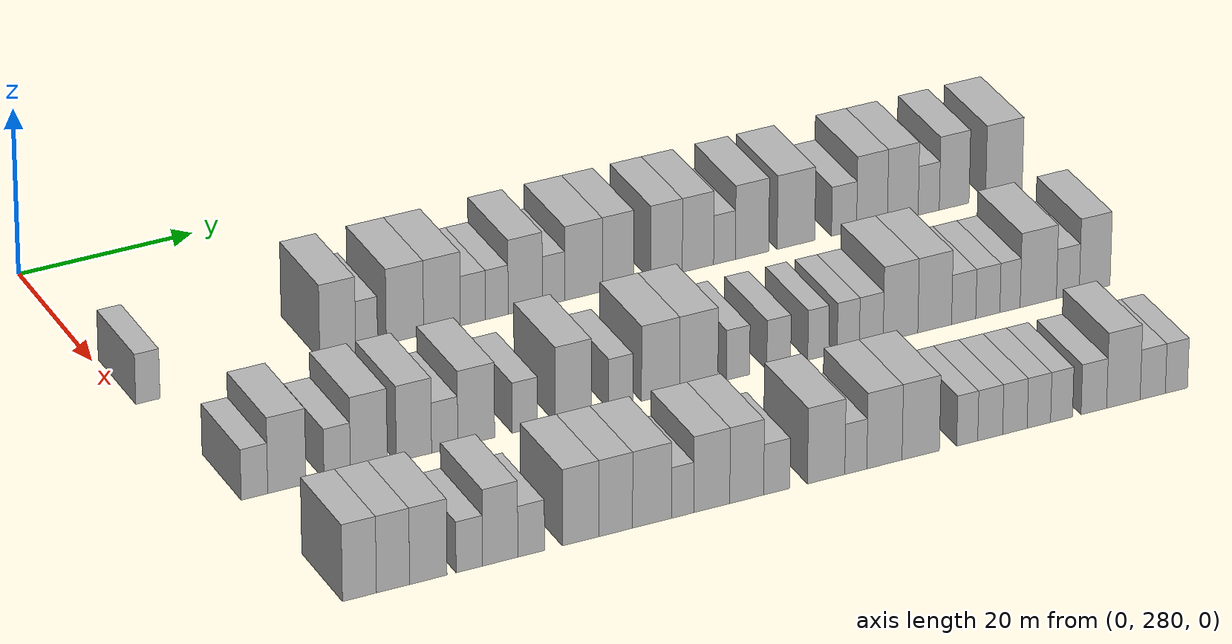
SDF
<sdf version="1.6">
 <world name="default">
  <model name="building_175">
   <static>1</static>
   <pose>25.0000 282.0387 0 0.000000 0.000000 0.000000</pose>
   <link name="link">
    <pose>0 0 3.00 0 0 0</pose>
    <collision name="collision"><geometry><box><size>10.0000 2.7257 6.0000</size></box></geometry></collision>
    <visual name="visual">
     <cast_shadows>0</cast_shadows>
     <geometry><box><size>10.0000 2.7257 6.0000</size></box></geometry>
     <material>
      <script>
       <uri>model://HANNAS_wall/materials/scripts</uri>
       <uri>model://HANNAS_wall/materials/textures</uri>
       <name>vrc/HANNAS_wall</name>
      </script>
     </material>
    </visual>
   </link>
  </model>
  <model name="building_176">
   <static>1</static>
   <pose>25.0000 303.5661 0 0.000000 0.000000 0.000000</pose>
   <link name="link">
    <pose>0 0 4.50 0 0 0</pose>
    <collision name="collision"><geometry><box><size>10.0000 4.1097 9.0000</size></box></geometry></collision>
    <visual name="visual">
     <cast_shadows>0</cast_shadows>
     <geometry><box><size>10.0000 4.1097 9.0000</size></box></geometry>
     <material>
      <script>
       <uri>model://HANNAS_wall/materials/scripts</uri>
       <uri>model://HANNAS_wall/materials/textures</uri>
       <name>vrc/HANNAS_wall</name>
      </script>
     </material>
    </visual>
   </link>
  </model>
  <model name="building_177">
   <static>1</static>
   <pose>25.0000 306.8743 0 0.000000 0.000000 0.000000</pose>
   <link name="link">
    <pose>0 0 3.00 0 0 0</pose>
    <collision name="collision"><geometry><box><size>10.0000 2.5068 6.0000</size></box></geometry></collision>
    <visual name="visual">
     <cast_shadows>0</cast_shadows>
     <geometry><box><size>10.0000 2.5068 6.0000</size></box></geometry>
     <material>
      <script>
       <uri>model://HANNAS_wall/materials/scripts</uri>
       <uri>model://HANNAS_wall/materials/textures</uri>
       <name>vrc/HANNAS_wall</name>
      </script>
     </material>
    </visual>
   </link>
  </model>
  <model name="building_178">
   <static>1</static>
   <pose>25.0000 311.2769 0 0.000000 0.000000 0.000000</pose>
   <link name="link">
    <pose>0 0 4.50 0 0 0</pose>
    <collision name="collision"><geometry><box><size>10.0000 4.2982 9.0000</size></box></geometry></collision>
    <visual name="visual">
     <cast_shadows>0</cast_shadows>
     <geometry><box><size>10.0000 4.2982 9.0000</size></box></geometry>
     <material>
      <script>
       <uri>model://HANNAS_wall/materials/scripts</uri>
       <uri>model://HANNAS_wall/materials/textures</uri>
       <name>vrc/HANNAS_wall</name>
      </script>
     </material>
    </visual>
   </link>
  </model>
  <model name="building_179">
   <static>1</static>
   <pose>25.0000 315.5444 0 0.000000 0.000000 0.000000</pose>
   <link name="link">
    <pose>0 0 4.50 0 0 0</pose>
    <collision name="collision"><geometry><box><size>10.0000 4.2368 9.0000</size></box></geometry></collision>
    <visual name="visual">
     <cast_shadows>0</cast_shadows>
     <geometry><box><size>10.0000 4.2368 9.0000</size></box></geometry>
     <material>
      <script>
       <uri>model://HANNAS_wall/materials/scripts</uri>
       <uri>model://HANNAS_wall/materials/textures</uri>
       <name>vrc/HANNAS_wall</name>
      </script>
     </material>
    </visual>
   </link>
  </model>
  <model name="building_180">
   <static>1</static>
   <pose>25.0000 319.1204 0 0.000000 0.000000 0.000000</pose>
   <link name="link">
    <pose>0 0 3.00 0 0 0</pose>
    <collision name="collision"><geometry><box><size>10.0000 2.9154 6.0000</size></box></geometry></collision>
    <visual name="visual">
     <cast_shadows>0</cast_shadows>
     <geometry><box><size>10.0000 2.9154 6.0000</size></box></geometry>
     <material>
      <script>
       <uri>model://HANNAS_wall/materials/scripts</uri>
       <uri>model://HANNAS_wall/materials/textures</uri>
       <name>vrc/HANNAS_wall</name>
      </script>
     </material>
    </visual>
   </link>
  </model>
  <model name="building_181">
   <static>1</static>
   <pose>25.0000 321.8906 0 0.000000 0.000000 0.000000</pose>
   <link name="link">
    <pose>0 0 3.00 0 0 0</pose>
    <collision name="collision"><geometry><box><size>10.0000 2.6249 6.0000</size></box></geometry></collision>
    <visual name="visual">
     <cast_shadows>0</cast_shadows>
     <geometry><box><size>10.0000 2.6249 6.0000</size></box></geometry>
     <material>
      <script>
       <uri>model://HANNAS_wall/materials/scripts</uri>
       <uri>model://HANNAS_wall/materials/textures</uri>
       <name>vrc/HANNAS_wall</name>
      </script>
     </material>
    </visual>
   </link>
  </model>
  <model name="building_182">
   <static>1</static>
   <pose>25.0000 325.1886 0 0.000000 0.000000 0.000000</pose>
   <link name="link">
    <pose>0 0 4.50 0 0 0</pose>
    <collision name="collision"><geometry><box><size>10.0000 3.9711 9.0000</size></box></geometry></collision>
    <visual name="visual">
     <cast_shadows>0</cast_shadows>
     <geometry><box><size>10.0000 3.9711 9.0000</size></box></geometry>
     <material>
      <script>
       <uri>model://HANNAS_wall/materials/scripts</uri>
       <uri>model://HANNAS_wall/materials/textures</uri>
       <name>vrc/HANNAS_wall</name>
      </script>
     </material>
    </visual>
   </link>
  </model>
  <model name="building_183">
   <static>1</static>
   <pose>25.0000 328.4750 0 0.000000 0.000000 0.000000</pose>
   <link name="link">
    <pose>0 0 3.00 0 0 0</pose>
    <collision name="collision"><geometry><box><size>10.0000 2.6016 6.0000</size></box></geometry></collision>
    <visual name="visual">
     <cast_shadows>0</cast_shadows>
     <geometry><box><size>10.0000 2.6016 6.0000</size></box></geometry>
     <material>
      <script>
       <uri>model://HANNAS_wall/materials/scripts</uri>
       <uri>model://HANNAS_wall/materials/textures</uri>
       <name>vrc/HANNAS_wall</name>
      </script>
     </material>
    </visual>
   </link>
  </model>
  <model name="building_184">
   <static>1</static>
   <pose>25.0000 331.9792 0 0.000000 0.000000 0.000000</pose>
   <link name="link">
    <pose>0 0 4.50 0 0 0</pose>
    <collision name="collision"><geometry><box><size>10.0000 4.4068 9.0000</size></box></geometry></collision>
    <visual name="visual">
     <cast_shadows>0</cast_shadows>
     <geometry><box><size>10.0000 4.4068 9.0000</size></box></geometry>
     <material>
      <script>
       <uri>model://HANNAS_wall/materials/scripts</uri>
       <uri>model://HANNAS_wall/materials/textures</uri>
       <name>vrc/HANNAS_wall</name>
      </script>
     </material>
    </visual>
   </link>
  </model>
  <model name="building_185">
   <static>1</static>
   <pose>25.0000 336.0166 0 0.000000 0.000000 0.000000</pose>
   <link name="link">
    <pose>0 0 4.50 0 0 0</pose>
    <collision name="collision"><geometry><box><size>10.0000 3.6681 9.0000</size></box></geometry></collision>
    <visual name="visual">
     <cast_shadows>0</cast_shadows>
     <geometry><box><size>10.0000 3.6681 9.0000</size></box></geometry>
     <material>
      <script>
       <uri>model://HANNAS_wall/materials/scripts</uri>
       <uri>model://HANNAS_wall/materials/textures</uri>
       <name>vrc/HANNAS_wall</name>
      </script>
     </material>
    </visual>
   </link>
  </model>
  <model name="building_186">
   <static>1</static>
   <pose>25.0000 341.7189 0 0.000000 0.000000 0.000000</pose>
   <link name="link">
    <pose>0 0 4.50 0 0 0</pose>
    <collision name="collision"><geometry><box><size>10.0000 3.7366 9.0000</size></box></geometry></collision>
    <visual name="visual">
     <cast_shadows>0</cast_shadows>
     <geometry><box><size>10.0000 3.7366 9.0000</size></box></geometry>
     <material>
      <script>
       <uri>model://HANNAS_wall/materials/scripts</uri>
       <uri>model://HANNAS_wall/materials/textures</uri>
       <name>vrc/HANNAS_wall</name>
      </script>
     </material>
    </visual>
   </link>
  </model>
  <model name="building_187">
   <static>1</static>
   <pose>25.0000 345.4388 0 0.000000 0.000000 0.000000</pose>
   <link name="link">
    <pose>0 0 4.50 0 0 0</pose>
    <collision name="collision"><geometry><box><size>10.0000 3.7031 9.0000</size></box></geometry></collision>
    <visual name="visual">
     <cast_shadows>0</cast_shadows>
     <geometry><box><size>10.0000 3.7031 9.0000</size></box></geometry>
     <material>
      <script>
       <uri>model://HANNAS_wall/materials/scripts</uri>
       <uri>model://HANNAS_wall/materials/textures</uri>
       <name>vrc/HANNAS_wall</name>
      </script>
     </material>
    </visual>
   </link>
  </model>
  <model name="building_188">
   <static>1</static>
   <pose>25.0000 348.5798 0 0.000000 0.000000 0.000000</pose>
   <link name="link">
    <pose>0 0 3.00 0 0 0</pose>
    <collision name="collision"><geometry><box><size>10.0000 2.5790 6.0000</size></box></geometry></collision>
    <visual name="visual">
     <cast_shadows>0</cast_shadows>
     <geometry><box><size>10.0000 2.5790 6.0000</size></box></geometry>
     <material>
      <script>
       <uri>model://HANNAS_wall/materials/scripts</uri>
       <uri>model://HANNAS_wall/materials/textures</uri>
       <name>vrc/HANNAS_wall</name>
      </script>
     </material>
    </visual>
   </link>
  </model>
  <model name="building_189">
   <static>1</static>
   <pose>25.0000 351.8512 0 0.000000 0.000000 0.000000</pose>
   <link name="link">
    <pose>0 0 4.50 0 0 0</pose>
    <collision name="collision"><geometry><box><size>10.0000 3.9637 9.0000</size></box></geometry></collision>
    <visual name="visual">
     <cast_shadows>0</cast_shadows>
     <geometry><box><size>10.0000 3.9637 9.0000</size></box></geometry>
     <material>
      <script>
       <uri>model://HANNAS_wall/materials/scripts</uri>
       <uri>model://HANNAS_wall/materials/textures</uri>
       <name>vrc/HANNAS_wall</name>
      </script>
     </material>
    </visual>
   </link>
  </model>
  <model name="building_190">
   <static>1</static>
   <pose>25.0000 357.0790 0 0.000000 0.000000 0.000000</pose>
   <link name="link">
    <pose>0 0 4.50 0 0 0</pose>
    <collision name="collision"><geometry><box><size>10.0000 4.4919 9.0000</size></box></geometry></collision>
    <visual name="visual">
     <cast_shadows>0</cast_shadows>
     <geometry><box><size>10.0000 4.4919 9.0000</size></box></geometry>
     <material>
      <script>
       <uri>model://HANNAS_wall/materials/scripts</uri>
       <uri>model://HANNAS_wall/materials/textures</uri>
       <name>vrc/HANNAS_wall</name>
      </script>
     </material>
    </visual>
   </link>
  </model>
  <model name="building_191">
   <static>1</static>
   <pose>25.0000 362.8228 0 0.000000 0.000000 0.000000</pose>
   <link name="link">
    <pose>0 0 3.00 0 0 0</pose>
    <collision name="collision"><geometry><box><size>10.0000 2.9957 6.0000</size></box></geometry></collision>
    <visual name="visual">
     <cast_shadows>0</cast_shadows>
     <geometry><box><size>10.0000 2.9957 6.0000</size></box></geometry>
     <material>
      <script>
       <uri>model://HANNAS_wall/materials/scripts</uri>
       <uri>model://HANNAS_wall/materials/textures</uri>
       <name>vrc/HANNAS_wall</name>
      </script>
     </material>
    </visual>
   </link>
  </model>
  <model name="building_192">
   <static>1</static>
   <pose>25.0000 366.1703 0 0.000000 0.000000 0.000000</pose>
   <link name="link">
    <pose>0 0 4.50 0 0 0</pose>
    <collision name="collision"><geometry><box><size>10.0000 3.6993 9.0000</size></box></geometry></collision>
    <visual name="visual">
     <cast_shadows>0</cast_shadows>
     <geometry><box><size>10.0000 3.6993 9.0000</size></box></geometry>
     <material>
      <script>
       <uri>model://HANNAS_wall/materials/scripts</uri>
       <uri>model://HANNAS_wall/materials/textures</uri>
       <name>vrc/HANNAS_wall</name>
      </script>
     </material>
    </visual>
   </link>
  </model>
  <model name="building_193">
   <static>1</static>
   <pose>25.0000 369.8741 0 0.000000 0.000000 0.000000</pose>
   <link name="link">
    <pose>0 0 4.50 0 0 0</pose>
    <collision name="collision"><geometry><box><size>10.0000 3.7083 9.0000</size></box></geometry></collision>
    <visual name="visual">
     <cast_shadows>0</cast_shadows>
     <geometry><box><size>10.0000 3.7083 9.0000</size></box></geometry>
     <material>
      <script>
       <uri>model://HANNAS_wall/materials/scripts</uri>
       <uri>model://HANNAS_wall/materials/textures</uri>
       <name>vrc/HANNAS_wall</name>
      </script>
     </material>
    </visual>
   </link>
  </model>
  <model name="building_194">
   <static>1</static>
   <pose>25.0000 373.0044 0 0.000000 0.000000 0.000000</pose>
   <link name="link">
    <pose>0 0 3.00 0 0 0</pose>
    <collision name="collision"><geometry><box><size>10.0000 2.5522 6.0000</size></box></geometry></collision>
    <visual name="visual">
     <cast_shadows>0</cast_shadows>
     <geometry><box><size>10.0000 2.5522 6.0000</size></box></geometry>
     <material>
      <script>
       <uri>model://HANNAS_wall/materials/scripts</uri>
       <uri>model://HANNAS_wall/materials/textures</uri>
       <name>vrc/HANNAS_wall</name>
      </script>
     </material>
    </visual>
   </link>
  </model>
  <model name="building_195">
   <static>1</static>
   <pose>25.0000 376.0838 0 0.000000 0.000000 0.000000</pose>
   <link name="link">
    <pose>0 0 4.50 0 0 0</pose>
    <collision name="collision"><geometry><box><size>10.0000 3.6067 9.0000</size></box></geometry></collision>
    <visual name="visual">
     <cast_shadows>0</cast_shadows>
     <geometry><box><size>10.0000 3.6067 9.0000</size></box></geometry>
     <material>
      <script>
       <uri>model://HANNAS_wall/materials/scripts</uri>
       <uri>model://HANNAS_wall/materials/textures</uri>
       <name>vrc/HANNAS_wall</name>
      </script>
     </material>
    </visual>
   </link>
  </model>
  <model name="building_196">
   <static>1</static>
   <pose>25.0000 382.1126 0 0.000000 0.000000 0.000000</pose>
   <link name="link">
    <pose>0 0 4.50 0 0 0</pose>
    <collision name="collision"><geometry><box><size>10.0000 4.4509 9.0000</size></box></geometry></collision>
    <visual name="visual">
     <cast_shadows>0</cast_shadows>
     <geometry><box><size>10.0000 4.4509 9.0000</size></box></geometry>
     <material>
      <script>
       <uri>model://HANNAS_wall/materials/scripts</uri>
       <uri>model://HANNAS_wall/materials/textures</uri>
       <name>vrc/HANNAS_wall</name>
      </script>
     </material>
    </visual>
   </link>
  </model>
  <model name="building_360">
   <static>1</static>
   <pose>47.0000 284.4471 0 0.000000 0.000000 0.000000</pose>
   <link name="link">
    <pose>0 0 3.00 0 0 0</pose>
    <collision name="collision"><geometry><box><size>10.0000 2.9553 6.0000</size></box></geometry></collision>
    <visual name="visual">
     <cast_shadows>0</cast_shadows>
     <geometry><box><size>10.0000 2.9553 6.0000</size></box></geometry>
     <material>
      <script>
       <uri>model://HANNAS_wall/materials/scripts</uri>
       <uri>model://HANNAS_wall/materials/textures</uri>
       <name>vrc/HANNAS_wall</name>
      </script>
     </material>
    </visual>
   </link>
  </model>
  <model name="building_361">
   <static>1</static>
   <pose>47.0000 288.0548 0 0.000000 0.000000 0.000000</pose>
   <link name="link">
    <pose>0 0 4.50 0 0 0</pose>
    <collision name="collision"><geometry><box><size>10.0000 4.2600 9.0000</size></box></geometry></collision>
    <visual name="visual">
     <cast_shadows>0</cast_shadows>
     <geometry><box><size>10.0000 4.2600 9.0000</size></box></geometry>
     <material>
      <script>
       <uri>model://HANNAS_wall/materials/scripts</uri>
       <uri>model://HANNAS_wall/materials/textures</uri>
       <name>vrc/HANNAS_wall</name>
      </script>
     </material>
    </visual>
   </link>
  </model>
  <model name="building_362">
   <static>1</static>
   <pose>47.0000 293.6644 0 0.000000 0.000000 0.000000</pose>
   <link name="link">
    <pose>0 0 3.00 0 0 0</pose>
    <collision name="collision"><geometry><box><size>10.0000 2.9591 6.0000</size></box></geometry></collision>
    <visual name="visual">
     <cast_shadows>0</cast_shadows>
     <geometry><box><size>10.0000 2.9591 6.0000</size></box></geometry>
     <material>
      <script>
       <uri>model://HANNAS_wall/materials/scripts</uri>
       <uri>model://HANNAS_wall/materials/textures</uri>
       <name>vrc/HANNAS_wall</name>
      </script>
     </material>
    </visual>
   </link>
  </model>
  <model name="building_363">
   <static>1</static>
   <pose>47.0000 297.2146 0 0.000000 0.000000 0.000000</pose>
   <link name="link">
    <pose>0 0 4.50 0 0 0</pose>
    <collision name="collision"><geometry><box><size>10.0000 4.1412 9.0000</size></box></geometry></collision>
    <visual name="visual">
     <cast_shadows>0</cast_shadows>
     <geometry><box><size>10.0000 4.1412 9.0000</size></box></geometry>
     <material>
      <script>
       <uri>model://HANNAS_wall/materials/scripts</uri>
       <uri>model://HANNAS_wall/materials/textures</uri>
       <name>vrc/HANNAS_wall</name>
      </script>
     </material>
    </visual>
   </link>
  </model>
  <model name="building_364">
   <static>1</static>
   <pose>47.0000 302.2692 0 0.000000 0.000000 0.000000</pose>
   <link name="link">
    <pose>0 0 4.50 0 0 0</pose>
    <collision name="collision"><geometry><box><size>10.0000 3.9680 9.0000</size></box></geometry></collision>
    <visual name="visual">
     <cast_shadows>0</cast_shadows>
     <geometry><box><size>10.0000 3.9680 9.0000</size></box></geometry>
     <material>
      <script>
       <uri>model://HANNAS_wall/materials/scripts</uri>
       <uri>model://HANNAS_wall/materials/textures</uri>
       <name>vrc/HANNAS_wall</name>
      </script>
     </material>
    </visual>
   </link>
  </model>
  <model name="building_365">
   <static>1</static>
   <pose>47.0000 305.7345 0 0.000000 0.000000 0.000000</pose>
   <link name="link">
    <pose>0 0 3.00 0 0 0</pose>
    <collision name="collision"><geometry><box><size>10.0000 2.9626 6.0000</size></box></geometry></collision>
    <visual name="visual">
     <cast_shadows>0</cast_shadows>
     <geometry><box><size>10.0000 2.9626 6.0000</size></box></geometry>
     <material>
      <script>
       <uri>model://HANNAS_wall/materials/scripts</uri>
       <uri>model://HANNAS_wall/materials/textures</uri>
       <name>vrc/HANNAS_wall</name>
      </script>
     </material>
    </visual>
   </link>
  </model>
  <model name="building_366">
   <static>1</static>
   <pose>47.0000 309.3019 0 0.000000 0.000000 0.000000</pose>
   <link name="link">
    <pose>0 0 4.50 0 0 0</pose>
    <collision name="collision"><geometry><box><size>10.0000 4.1722 9.0000</size></box></geometry></collision>
    <visual name="visual">
     <cast_shadows>0</cast_shadows>
     <geometry><box><size>10.0000 4.1722 9.0000</size></box></geometry>
     <material>
      <script>
       <uri>model://HANNAS_wall/materials/scripts</uri>
       <uri>model://HANNAS_wall/materials/textures</uri>
       <name>vrc/HANNAS_wall</name>
      </script>
     </material>
    </visual>
   </link>
  </model>
  <model name="building_367">
   <static>1</static>
   <pose>47.0000 314.8306 0 0.000000 0.000000 0.000000</pose>
   <link name="link">
    <pose>0 0 3.00 0 0 0</pose>
    <collision name="collision"><geometry><box><size>10.0000 2.8851 6.0000</size></box></geometry></collision>
    <visual name="visual">
     <cast_shadows>0</cast_shadows>
     <geometry><box><size>10.0000 2.8851 6.0000</size></box></geometry>
     <material>
      <script>
       <uri>model://HANNAS_wall/materials/scripts</uri>
       <uri>model://HANNAS_wall/materials/textures</uri>
       <name>vrc/HANNAS_wall</name>
      </script>
     </material>
    </visual>
   </link>
  </model>
  <model name="building_368">
   <static>1</static>
   <pose>47.0000 320.3421 0 0.000000 0.000000 0.000000</pose>
   <link name="link">
    <pose>0 0 4.50 0 0 0</pose>
    <collision name="collision"><geometry><box><size>10.0000 4.1379 9.0000</size></box></geometry></collision>
    <visual name="visual">
     <cast_shadows>0</cast_shadows>
     <geometry><box><size>10.0000 4.1379 9.0000</size></box></geometry>
     <material>
      <script>
       <uri>model://HANNAS_wall/materials/scripts</uri>
       <uri>model://HANNAS_wall/materials/textures</uri>
       <name>vrc/HANNAS_wall</name>
      </script>
     </material>
    </visual>
   </link>
  </model>
  <model name="building_369">
   <static>1</static>
   <pose>47.0000 325.7837 0 0.000000 0.000000 0.000000</pose>
   <link name="link">
    <pose>0 0 3.00 0 0 0</pose>
    <collision name="collision"><geometry><box><size>10.0000 2.7454 6.0000</size></box></geometry></collision>
    <visual name="visual">
     <cast_shadows>0</cast_shadows>
     <geometry><box><size>10.0000 2.7454 6.0000</size></box></geometry>
     <material>
      <script>
       <uri>model://HANNAS_wall/materials/scripts</uri>
       <uri>model://HANNAS_wall/materials/textures</uri>
       <name>vrc/HANNAS_wall</name>
      </script>
     </material>
    </visual>
   </link>
  </model>
  <model name="building_370">
   <static>1</static>
   <pose>47.0000 330.3551 0 0.000000 0.000000 0.000000</pose>
   <link name="link">
    <pose>0 0 4.50 0 0 0</pose>
    <collision name="collision"><geometry><box><size>10.0000 4.3973 9.0000</size></box></geometry></collision>
    <visual name="visual">
     <cast_shadows>0</cast_shadows>
     <geometry><box><size>10.0000 4.3973 9.0000</size></box></geometry>
     <material>
      <script>
       <uri>model://HANNAS_wall/materials/scripts</uri>
       <uri>model://HANNAS_wall/materials/textures</uri>
       <name>vrc/HANNAS_wall</name>
      </script>
     </material>
    </visual>
   </link>
  </model>
  <model name="building_371">
   <static>1</static>
   <pose>47.0000 334.7604 0 0.000000 0.000000 0.000000</pose>
   <link name="link">
    <pose>0 0 4.50 0 0 0</pose>
    <collision name="collision"><geometry><box><size>10.0000 4.4133 9.0000</size></box></geometry></collision>
    <visual name="visual">
     <cast_shadows>0</cast_shadows>
     <geometry><box><size>10.0000 4.4133 9.0000</size></box></geometry>
     <material>
      <script>
       <uri>model://HANNAS_wall/materials/scripts</uri>
       <uri>model://HANNAS_wall/materials/textures</uri>
       <name>vrc/HANNAS_wall</name>
      </script>
     </material>
    </visual>
   </link>
  </model>
  <model name="building_372">
   <static>1</static>
   <pose>47.0000 339.3058 0 0.000000 0.000000 0.000000</pose>
   <link name="link">
    <pose>0 0 3.00 0 0 0</pose>
    <collision name="collision"><geometry><box><size>10.0000 2.6775 6.0000</size></box></geometry></collision>
    <visual name="visual">
     <cast_shadows>0</cast_shadows>
     <geometry><box><size>10.0000 2.6775 6.0000</size></box></geometry>
     <material>
      <script>
       <uri>model://HANNAS_wall/materials/scripts</uri>
       <uri>model://HANNAS_wall/materials/textures</uri>
       <name>vrc/HANNAS_wall</name>
      </script>
     </material>
    </visual>
   </link>
  </model>
  <model name="building_373">
   <static>1</static>
   <pose>47.0000 344.0290 0 0.000000 0.000000 0.000000</pose>
   <link name="link">
    <pose>0 0 3.00 0 0 0</pose>
    <collision name="collision"><geometry><box><size>10.0000 2.7689 6.0000</size></box></geometry></collision>
    <visual name="visual">
     <cast_shadows>0</cast_shadows>
     <geometry><box><size>10.0000 2.7689 6.0000</size></box></geometry>
     <material>
      <script>
       <uri>model://HANNAS_wall/materials/scripts</uri>
       <uri>model://HANNAS_wall/materials/textures</uri>
       <name>vrc/HANNAS_wall</name>
      </script>
     </material>
    </visual>
   </link>
  </model>
  <model name="building_374">
   <static>1</static>
   <pose>47.0000 348.6358 0 0.000000 0.000000 0.000000</pose>
   <link name="link">
    <pose>0 0 3.00 0 0 0</pose>
    <collision name="collision"><geometry><box><size>10.0000 2.4446 6.0000</size></box></geometry></collision>
    <visual name="visual">
     <cast_shadows>0</cast_shadows>
     <geometry><box><size>10.0000 2.4446 6.0000</size></box></geometry>
     <material>
      <script>
       <uri>model://HANNAS_wall/materials/scripts</uri>
       <uri>model://HANNAS_wall/materials/textures</uri>
       <name>vrc/HANNAS_wall</name>
      </script>
     </material>
    </visual>
   </link>
  </model>
  <model name="building_375">
   <static>1</static>
   <pose>47.0000 352.1549 0 0.000000 0.000000 0.000000</pose>
   <link name="link">
    <pose>0 0 3.00 0 0 0</pose>
    <collision name="collision"><geometry><box><size>10.0000 2.5936 6.0000</size></box></geometry></collision>
    <visual name="visual">
     <cast_shadows>0</cast_shadows>
     <geometry><box><size>10.0000 2.5936 6.0000</size></box></geometry>
     <material>
      <script>
       <uri>model://HANNAS_wall/materials/scripts</uri>
       <uri>model://HANNAS_wall/materials/textures</uri>
       <name>vrc/HANNAS_wall</name>
      </script>
     </material>
    </visual>
   </link>
  </model>
  <model name="building_376">
   <static>1</static>
   <pose>47.0000 354.8512 0 0.000000 0.000000 0.000000</pose>
   <link name="link">
    <pose>0 0 3.00 0 0 0</pose>
    <collision name="collision"><geometry><box><size>10.0000 2.7989 6.0000</size></box></geometry></collision>
    <visual name="visual">
     <cast_shadows>0</cast_shadows>
     <geometry><box><size>10.0000 2.7989 6.0000</size></box></geometry>
     <material>
      <script>
       <uri>model://HANNAS_wall/materials/scripts</uri>
       <uri>model://HANNAS_wall/materials/textures</uri>
       <name>vrc/HANNAS_wall</name>
      </script>
     </material>
    </visual>
   </link>
  </model>
  <model name="building_377">
   <static>1</static>
   <pose>47.0000 358.2914 0 0.000000 0.000000 0.000000</pose>
   <link name="link">
    <pose>0 0 4.50 0 0 0</pose>
    <collision name="collision"><geometry><box><size>10.0000 4.0816 9.0000</size></box></geometry></collision>
    <visual name="visual">
     <cast_shadows>0</cast_shadows>
     <geometry><box><size>10.0000 4.0816 9.0000</size></box></geometry>
     <material>
      <script>
       <uri>model://HANNAS_wall/materials/scripts</uri>
       <uri>model://HANNAS_wall/materials/textures</uri>
       <name>vrc/HANNAS_wall</name>
      </script>
     </material>
    </visual>
   </link>
  </model>
  <model name="building_378">
   <static>1</static>
   <pose>47.0000 362.3248 0 0.000000 0.000000 0.000000</pose>
   <link name="link">
    <pose>0 0 4.50 0 0 0</pose>
    <collision name="collision"><geometry><box><size>10.0000 3.9851 9.0000</size></box></geometry></collision>
    <visual name="visual">
     <cast_shadows>0</cast_shadows>
     <geometry><box><size>10.0000 3.9851 9.0000</size></box></geometry>
     <material>
      <script>
       <uri>model://HANNAS_wall/materials/scripts</uri>
       <uri>model://HANNAS_wall/materials/textures</uri>
       <name>vrc/HANNAS_wall</name>
      </script>
     </material>
    </visual>
   </link>
  </model>
  <model name="building_379">
   <static>1</static>
   <pose>47.0000 365.7512 0 0.000000 0.000000 0.000000</pose>
   <link name="link">
    <pose>0 0 3.00 0 0 0</pose>
    <collision name="collision"><geometry><box><size>10.0000 2.8679 6.0000</size></box></geometry></collision>
    <visual name="visual">
     <cast_shadows>0</cast_shadows>
     <geometry><box><size>10.0000 2.8679 6.0000</size></box></geometry>
     <material>
      <script>
       <uri>model://HANNAS_wall/materials/scripts</uri>
       <uri>model://HANNAS_wall/materials/textures</uri>
       <name>vrc/HANNAS_wall</name>
      </script>
     </material>
    </visual>
   </link>
  </model>
  <model name="building_380">
   <static>1</static>
   <pose>47.0000 368.6133 0 0.000000 0.000000 0.000000</pose>
   <link name="link">
    <pose>0 0 3.00 0 0 0</pose>
    <collision name="collision"><geometry><box><size>10.0000 2.8563 6.0000</size></box></geometry></collision>
    <visual name="visual">
     <cast_shadows>0</cast_shadows>
     <geometry><box><size>10.0000 2.8563 6.0000</size></box></geometry>
     <material>
      <script>
       <uri>model://HANNAS_wall/materials/scripts</uri>
       <uri>model://HANNAS_wall/materials/textures</uri>
       <name>vrc/HANNAS_wall</name>
      </script>
     </material>
    </visual>
   </link>
  </model>
  <model name="building_381">
   <static>1</static>
   <pose>47.0000 371.2460 0 0.000000 0.000000 0.000000</pose>
   <link name="link">
    <pose>0 0 3.00 0 0 0</pose>
    <collision name="collision"><geometry><box><size>10.0000 2.4090 6.0000</size></box></geometry></collision>
    <visual name="visual">
     <cast_shadows>0</cast_shadows>
     <geometry><box><size>10.0000 2.4090 6.0000</size></box></geometry>
     <material>
      <script>
       <uri>model://HANNAS_wall/materials/scripts</uri>
       <uri>model://HANNAS_wall/materials/textures</uri>
       <name>vrc/HANNAS_wall</name>
      </script>
     </material>
    </visual>
   </link>
  </model>
  <model name="building_382">
   <static>1</static>
   <pose>47.0000 374.6171 0 0.000000 0.000000 0.000000</pose>
   <link name="link">
    <pose>0 0 4.50 0 0 0</pose>
    <collision name="collision"><geometry><box><size>10.0000 4.3332 9.0000</size></box></geometry></collision>
    <visual name="visual">
     <cast_shadows>0</cast_shadows>
     <geometry><box><size>10.0000 4.3332 9.0000</size></box></geometry>
     <material>
      <script>
       <uri>model://HANNAS_wall/materials/scripts</uri>
       <uri>model://HANNAS_wall/materials/textures</uri>
       <name>vrc/HANNAS_wall</name>
      </script>
     </material>
    </visual>
   </link>
  </model>
  <model name="building_383">
   <static>1</static>
   <pose>47.0000 378.1491 0 0.000000 0.000000 0.000000</pose>
   <link name="link">
    <pose>0 0 3.00 0 0 0</pose>
    <collision name="collision"><geometry><box><size>10.0000 2.7309 6.0000</size></box></geometry></collision>
    <visual name="visual">
     <cast_shadows>0</cast_shadows>
     <geometry><box><size>10.0000 2.7309 6.0000</size></box></geometry>
     <material>
      <script>
       <uri>model://HANNAS_wall/materials/scripts</uri>
       <uri>model://HANNAS_wall/materials/textures</uri>
       <name>vrc/HANNAS_wall</name>
      </script>
     </material>
    </visual>
   </link>
  </model>
  <model name="building_384">
   <static>1</static>
   <pose>47.0000 381.3581 0 0.000000 0.000000 0.000000</pose>
   <link name="link">
    <pose>0 0 4.50 0 0 0</pose>
    <collision name="collision"><geometry><box><size>10.0000 3.6871 9.0000</size></box></geometry></collision>
    <visual name="visual">
     <cast_shadows>0</cast_shadows>
     <geometry><box><size>10.0000 3.6871 9.0000</size></box></geometry>
     <material>
      <script>
       <uri>model://HANNAS_wall/materials/scripts</uri>
       <uri>model://HANNAS_wall/materials/textures</uri>
       <name>vrc/HANNAS_wall</name>
      </script>
     </material>
    </visual>
   </link>
  </model>
  <model name="building_555">
   <static>1</static>
   <pose>69.0000 286.2532 0 0.000000 0.000000 0.000000</pose>
   <link name="link">
    <pose>0 0 4.50 0 0 0</pose>
    <collision name="collision"><geometry><box><size>10.0000 3.7239 9.0000</size></box></geometry></collision>
    <visual name="visual">
     <cast_shadows>0</cast_shadows>
     <geometry><box><size>10.0000 3.7239 9.0000</size></box></geometry>
     <material>
      <script>
       <uri>model://HANNAS_wall/materials/scripts</uri>
       <uri>model://HANNAS_wall/materials/textures</uri>
       <name>vrc/HANNAS_wall</name>
      </script>
     </material>
    </visual>
   </link>
  </model>
  <model name="building_556">
   <static>1</static>
   <pose>69.0000 289.9377 0 0.000000 0.000000 0.000000</pose>
   <link name="link">
    <pose>0 0 4.50 0 0 0</pose>
    <collision name="collision"><geometry><box><size>10.0000 3.6452 9.0000</size></box></geometry></collision>
    <visual name="visual">
     <cast_shadows>0</cast_shadows>
     <geometry><box><size>10.0000 3.6452 9.0000</size></box></geometry>
     <material>
      <script>
       <uri>model://HANNAS_wall/materials/scripts</uri>
       <uri>model://HANNAS_wall/materials/textures</uri>
       <name>vrc/HANNAS_wall</name>
      </script>
     </material>
    </visual>
   </link>
  </model>
  <model name="building_557">
   <static>1</static>
   <pose>69.0000 293.8184 0 0.000000 0.000000 0.000000</pose>
   <link name="link">
    <pose>0 0 4.50 0 0 0</pose>
    <collision name="collision"><geometry><box><size>10.0000 4.1161 9.0000</size></box></geometry></collision>
    <visual name="visual">
     <cast_shadows>0</cast_shadows>
     <geometry><box><size>10.0000 4.1161 9.0000</size></box></geometry>
     <material>
      <script>
       <uri>model://HANNAS_wall/materials/scripts</uri>
       <uri>model://HANNAS_wall/materials/textures</uri>
       <name>vrc/HANNAS_wall</name>
      </script>
     </material>
    </visual>
   </link>
  </model>
  <model name="building_558">
   <static>1</static>
   <pose>69.0000 298.3413 0 0.000000 0.000000 0.000000</pose>
   <link name="link">
    <pose>0 0 3.00 0 0 0</pose>
    <collision name="collision"><geometry><box><size>10.0000 2.9298 6.0000</size></box></geometry></collision>
    <visual name="visual">
     <cast_shadows>0</cast_shadows>
     <geometry><box><size>10.0000 2.9298 6.0000</size></box></geometry>
     <material>
      <script>
       <uri>model://HANNAS_wall/materials/scripts</uri>
       <uri>model://HANNAS_wall/materials/textures</uri>
       <name>vrc/HANNAS_wall</name>
      </script>
     </material>
    </visual>
   </link>
  </model>
  <model name="building_559">
   <static>1</static>
   <pose>69.0000 301.7588 0 0.000000 0.000000 0.000000</pose>
   <link name="link">
    <pose>0 0 4.50 0 0 0</pose>
    <collision name="collision"><geometry><box><size>10.0000 3.9051 9.0000</size></box></geometry></collision>
    <visual name="visual">
     <cast_shadows>0</cast_shadows>
     <geometry><box><size>10.0000 3.9051 9.0000</size></box></geometry>
     <material>
      <script>
       <uri>model://HANNAS_wall/materials/scripts</uri>
       <uri>model://HANNAS_wall/materials/textures</uri>
       <name>vrc/HANNAS_wall</name>
      </script>
     </material>
    </visual>
   </link>
  </model>
  <model name="building_560">
   <static>1</static>
   <pose>69.0000 305.1915 0 0.000000 0.000000 0.000000</pose>
   <link name="link">
    <pose>0 0 3.00 0 0 0</pose>
    <collision name="collision"><geometry><box><size>10.0000 2.9604 6.0000</size></box></geometry></collision>
    <visual name="visual">
     <cast_shadows>0</cast_shadows>
     <geometry><box><size>10.0000 2.9604 6.0000</size></box></geometry>
     <material>
      <script>
       <uri>model://HANNAS_wall/materials/scripts</uri>
       <uri>model://HANNAS_wall/materials/textures</uri>
       <name>vrc/HANNAS_wall</name>
      </script>
     </material>
    </visual>
   </link>
  </model>
  <model name="building_561">
   <static>1</static>
   <pose>69.0000 310.7038 0 0.000000 0.000000 0.000000</pose>
   <link name="link">
    <pose>0 0 4.50 0 0 0</pose>
    <collision name="collision"><geometry><box><size>10.0000 4.0642 9.0000</size></box></geometry></collision>
    <visual name="visual">
     <cast_shadows>0</cast_shadows>
     <geometry><box><size>10.0000 4.0642 9.0000</size></box></geometry>
     <material>
      <script>
       <uri>model://HANNAS_wall/materials/scripts</uri>
       <uri>model://HANNAS_wall/materials/textures</uri>
       <name>vrc/HANNAS_wall</name>
      </script>
     </material>
    </visual>
   </link>
  </model>
  <model name="building_562">
   <static>1</static>
   <pose>69.0000 314.6319 0 0.000000 0.000000 0.000000</pose>
   <link name="link">
    <pose>0 0 4.50 0 0 0</pose>
    <collision name="collision"><geometry><box><size>10.0000 3.7920 9.0000</size></box></geometry></collision>
    <visual name="visual">
     <cast_shadows>0</cast_shadows>
     <geometry><box><size>10.0000 3.7920 9.0000</size></box></geometry>
     <material>
      <script>
       <uri>model://HANNAS_wall/materials/scripts</uri>
       <uri>model://HANNAS_wall/materials/textures</uri>
       <name>vrc/HANNAS_wall</name>
      </script>
     </material>
    </visual>
   </link>
  </model>
  <model name="building_563">
   <static>1</static>
   <pose>69.0000 318.7192 0 0.000000 0.000000 0.000000</pose>
   <link name="link">
    <pose>0 0 4.50 0 0 0</pose>
    <collision name="collision"><geometry><box><size>10.0000 4.3826 9.0000</size></box></geometry></collision>
    <visual name="visual">
     <cast_shadows>0</cast_shadows>
     <geometry><box><size>10.0000 4.3826 9.0000</size></box></geometry>
     <material>
      <script>
       <uri>model://HANNAS_wall/materials/scripts</uri>
       <uri>model://HANNAS_wall/materials/textures</uri>
       <name>vrc/HANNAS_wall</name>
      </script>
     </material>
    </visual>
   </link>
  </model>
  <model name="building_564">
   <static>1</static>
   <pose>69.0000 322.1604 0 0.000000 0.000000 0.000000</pose>
   <link name="link">
    <pose>0 0 3.00 0 0 0</pose>
    <collision name="collision"><geometry><box><size>10.0000 2.4997 6.0000</size></box></geometry></collision>
    <visual name="visual">
     <cast_shadows>0</cast_shadows>
     <geometry><box><size>10.0000 2.4997 6.0000</size></box></geometry>
     <material>
      <script>
       <uri>model://HANNAS_wall/materials/scripts</uri>
       <uri>model://HANNAS_wall/materials/textures</uri>
       <name>vrc/HANNAS_wall</name>
      </script>
     </material>
    </visual>
   </link>
  </model>
  <model name="building_565">
   <static>1</static>
   <pose>69.0000 325.4448 0 0.000000 0.000000 0.000000</pose>
   <link name="link">
    <pose>0 0 4.50 0 0 0</pose>
    <collision name="collision"><geometry><box><size>10.0000 4.0691 9.0000</size></box></geometry></collision>
    <visual name="visual">
     <cast_shadows>0</cast_shadows>
     <geometry><box><size>10.0000 4.0691 9.0000</size></box></geometry>
     <material>
      <script>
       <uri>model://HANNAS_wall/materials/scripts</uri>
       <uri>model://HANNAS_wall/materials/textures</uri>
       <name>vrc/HANNAS_wall</name>
      </script>
     </material>
    </visual>
   </link>
  </model>
  <model name="building_566">
   <static>1</static>
   <pose>69.0000 329.4046 0 0.000000 0.000000 0.000000</pose>
   <link name="link">
    <pose>0 0 4.50 0 0 0</pose>
    <collision name="collision"><geometry><box><size>10.0000 3.8504 9.0000</size></box></geometry></collision>
    <visual name="visual">
     <cast_shadows>0</cast_shadows>
     <geometry><box><size>10.0000 3.8504 9.0000</size></box></geometry>
     <material>
      <script>
       <uri>model://HANNAS_wall/materials/scripts</uri>
       <uri>model://HANNAS_wall/materials/textures</uri>
       <name>vrc/HANNAS_wall</name>
      </script>
     </material>
    </visual>
   </link>
  </model>
  <model name="building_567">
   <static>1</static>
   <pose>69.0000 332.8194 0 0.000000 0.000000 0.000000</pose>
   <link name="link">
    <pose>0 0 3.00 0 0 0</pose>
    <collision name="collision"><geometry><box><size>10.0000 2.9791 6.0000</size></box></geometry></collision>
    <visual name="visual">
     <cast_shadows>0</cast_shadows>
     <geometry><box><size>10.0000 2.9791 6.0000</size></box></geometry>
     <material>
      <script>
       <uri>model://HANNAS_wall/materials/scripts</uri>
       <uri>model://HANNAS_wall/materials/textures</uri>
       <name>vrc/HANNAS_wall</name>
      </script>
     </material>
    </visual>
   </link>
  </model>
  <model name="building_568">
   <static>1</static>
   <pose>69.0000 338.4470 0 0.000000 0.000000 0.000000</pose>
   <link name="link">
    <pose>0 0 4.50 0 0 0</pose>
    <collision name="collision"><geometry><box><size>10.0000 4.2761 9.0000</size></box></geometry></collision>
    <visual name="visual">
     <cast_shadows>0</cast_shadows>
     <geometry><box><size>10.0000 4.2761 9.0000</size></box></geometry>
     <material>
      <script>
       <uri>model://HANNAS_wall/materials/scripts</uri>
       <uri>model://HANNAS_wall/materials/textures</uri>
       <name>vrc/HANNAS_wall</name>
      </script>
     </material>
    </visual>
   </link>
  </model>
  <model name="building_569">
   <static>1</static>
   <pose>69.0000 341.8434 0 0.000000 0.000000 0.000000</pose>
   <link name="link">
    <pose>0 0 3.00 0 0 0</pose>
    <collision name="collision"><geometry><box><size>10.0000 2.5168 6.0000</size></box></geometry></collision>
    <visual name="visual">
     <cast_shadows>0</cast_shadows>
     <geometry><box><size>10.0000 2.5168 6.0000</size></box></geometry>
     <material>
      <script>
       <uri>model://HANNAS_wall/materials/scripts</uri>
       <uri>model://HANNAS_wall/materials/textures</uri>
       <name>vrc/HANNAS_wall</name>
      </script>
     </material>
    </visual>
   </link>
  </model>
  <model name="building_570">
   <static>1</static>
   <pose>69.0000 345.1241 0 0.000000 0.000000 0.000000</pose>
   <link name="link">
    <pose>0 0 4.50 0 0 0</pose>
    <collision name="collision"><geometry><box><size>10.0000 4.0445 9.0000</size></box></geometry></collision>
    <visual name="visual">
     <cast_shadows>0</cast_shadows>
     <geometry><box><size>10.0000 4.0445 9.0000</size></box></geometry>
     <material>
      <script>
       <uri>model://HANNAS_wall/materials/scripts</uri>
       <uri>model://HANNAS_wall/materials/textures</uri>
       <name>vrc/HANNAS_wall</name>
      </script>
     </material>
    </visual>
   </link>
  </model>
  <model name="building_571">
   <static>1</static>
   <pose>69.0000 349.3029 0 0.000000 0.000000 0.000000</pose>
   <link name="link">
    <pose>0 0 4.50 0 0 0</pose>
    <collision name="collision"><geometry><box><size>10.0000 4.3132 9.0000</size></box></geometry></collision>
    <visual name="visual">
     <cast_shadows>0</cast_shadows>
     <geometry><box><size>10.0000 4.3132 9.0000</size></box></geometry>
     <material>
      <script>
       <uri>model://HANNAS_wall/materials/scripts</uri>
       <uri>model://HANNAS_wall/materials/textures</uri>
       <name>vrc/HANNAS_wall</name>
      </script>
     </material>
    </visual>
   </link>
  </model>
  <model name="building_572">
   <static>1</static>
   <pose>69.0000 354.6754 0 0.000000 0.000000 0.000000</pose>
   <link name="link">
    <pose>0 0 3.00 0 0 0</pose>
    <collision name="collision"><geometry><box><size>10.0000 2.4318 6.0000</size></box></geometry></collision>
    <visual name="visual">
     <cast_shadows>0</cast_shadows>
     <geometry><box><size>10.0000 2.4318 6.0000</size></box></geometry>
     <material>
      <script>
       <uri>model://HANNAS_wall/materials/scripts</uri>
       <uri>model://HANNAS_wall/materials/textures</uri>
       <name>vrc/HANNAS_wall</name>
      </script>
     </material>
    </visual>
   </link>
  </model>
  <model name="building_573">
   <static>1</static>
   <pose>69.0000 357.3364 0 0.000000 0.000000 0.000000</pose>
   <link name="link">
    <pose>0 0 3.00 0 0 0</pose>
    <collision name="collision"><geometry><box><size>10.0000 2.8901 6.0000</size></box></geometry></collision>
    <visual name="visual">
     <cast_shadows>0</cast_shadows>
     <geometry><box><size>10.0000 2.8901 6.0000</size></box></geometry>
     <material>
      <script>
       <uri>model://HANNAS_wall/materials/scripts</uri>
       <uri>model://HANNAS_wall/materials/textures</uri>
       <name>vrc/HANNAS_wall</name>
      </script>
     </material>
    </visual>
   </link>
  </model>
  <model name="building_574">
   <static>1</static>
   <pose>69.0000 360.2046 0 0.000000 0.000000 0.000000</pose>
   <link name="link">
    <pose>0 0 3.00 0 0 0</pose>
    <collision name="collision"><geometry><box><size>10.0000 2.8464 6.0000</size></box></geometry></collision>
    <visual name="visual">
     <cast_shadows>0</cast_shadows>
     <geometry><box><size>10.0000 2.8464 6.0000</size></box></geometry>
     <material>
      <script>
       <uri>model://HANNAS_wall/materials/scripts</uri>
       <uri>model://HANNAS_wall/materials/textures</uri>
       <name>vrc/HANNAS_wall</name>
      </script>
     </material>
    </visual>
   </link>
  </model>
  <model name="building_575">
   <static>1</static>
   <pose>69.0000 362.9967 0 0.000000 0.000000 0.000000</pose>
   <link name="link">
    <pose>0 0 3.00 0 0 0</pose>
    <collision name="collision"><geometry><box><size>10.0000 2.7377 6.0000</size></box></geometry></collision>
    <visual name="visual">
     <cast_shadows>0</cast_shadows>
     <geometry><box><size>10.0000 2.7377 6.0000</size></box></geometry>
     <material>
      <script>
       <uri>model://HANNAS_wall/materials/scripts</uri>
       <uri>model://HANNAS_wall/materials/textures</uri>
       <name>vrc/HANNAS_wall</name>
      </script>
     </material>
    </visual>
   </link>
  </model>
  <model name="building_576">
   <static>1</static>
   <pose>69.0000 365.6477 0 0.000000 0.000000 0.000000</pose>
   <link name="link">
    <pose>0 0 3.00 0 0 0</pose>
    <collision name="collision"><geometry><box><size>10.0000 2.5644 6.0000</size></box></geometry></collision>
    <visual name="visual">
     <cast_shadows>0</cast_shadows>
     <geometry><box><size>10.0000 2.5644 6.0000</size></box></geometry>
     <material>
      <script>
       <uri>model://HANNAS_wall/materials/scripts</uri>
       <uri>model://HANNAS_wall/materials/textures</uri>
       <name>vrc/HANNAS_wall</name>
      </script>
     </material>
    </visual>
   </link>
  </model>
  <model name="building_577">
   <static>1</static>
   <pose>69.0000 369.4269 0 0.000000 0.000000 0.000000</pose>
   <link name="link">
    <pose>0 0 3.00 0 0 0</pose>
    <collision name="collision"><geometry><box><size>10.0000 2.9940 6.0000</size></box></geometry></collision>
    <visual name="visual">
     <cast_shadows>0</cast_shadows>
     <geometry><box><size>10.0000 2.9940 6.0000</size></box></geometry>
     <material>
      <script>
       <uri>model://HANNAS_wall/materials/scripts</uri>
       <uri>model://HANNAS_wall/materials/textures</uri>
       <name>vrc/HANNAS_wall</name>
      </script>
     </material>
    </visual>
   </link>
  </model>
  <model name="building_578">
   <static>1</static>
   <pose>69.0000 372.8920 0 0.000000 0.000000 0.000000</pose>
   <link name="link">
    <pose>0 0 4.50 0 0 0</pose>
    <collision name="collision"><geometry><box><size>10.0000 3.9363 9.0000</size></box></geometry></collision>
    <visual name="visual">
     <cast_shadows>0</cast_shadows>
     <geometry><box><size>10.0000 3.9363 9.0000</size></box></geometry>
     <material>
      <script>
       <uri>model://HANNAS_wall/materials/scripts</uri>
       <uri>model://HANNAS_wall/materials/textures</uri>
       <name>vrc/HANNAS_wall</name>
      </script>
     </material>
    </visual>
   </link>
  </model>
  <model name="building_579">
   <static>1</static>
   <pose>69.0000 376.3454 0 0.000000 0.000000 0.000000</pose>
   <link name="link">
    <pose>0 0 3.00 0 0 0</pose>
    <collision name="collision"><geometry><box><size>10.0000 2.9704 6.0000</size></box></geometry></collision>
    <visual name="visual">
     <cast_shadows>0</cast_shadows>
     <geometry><box><size>10.0000 2.9704 6.0000</size></box></geometry>
     <material>
      <script>
       <uri>model://HANNAS_wall/materials/scripts</uri>
       <uri>model://HANNAS_wall/materials/textures</uri>
       <name>vrc/HANNAS_wall</name>
      </script>
     </material>
    </visual>
   </link>
  </model>
  <model name="building_580">
   <static>1</static>
   <pose>69.0000 379.1403 0 0.000000 0.000000 0.000000</pose>
   <link name="link">
    <pose>0 0 3.00 0 0 0</pose>
    <collision name="collision"><geometry><box><size>10.0000 2.6193 6.0000</size></box></geometry></collision>
    <visual name="visual">
     <cast_shadows>0</cast_shadows>
     <geometry><box><size>10.0000 2.6193 6.0000</size></box></geometry>
     <material>
      <script>
       <uri>model://HANNAS_wall/materials/scripts</uri>
       <uri>model://HANNAS_wall/materials/textures</uri>
       <name>vrc/HANNAS_wall</name>
      </script>
     </material>
    </visual>
   </link>
  </model>
 </world>
</sdf>
